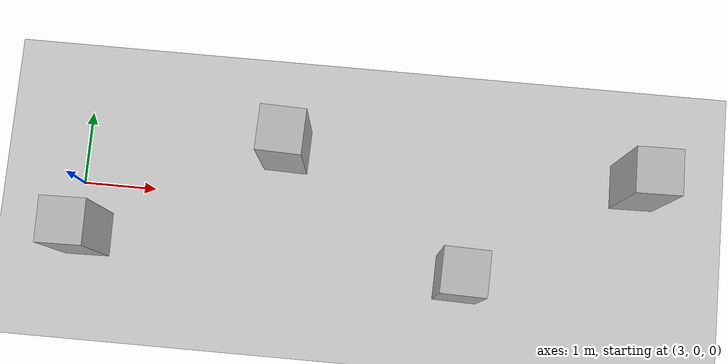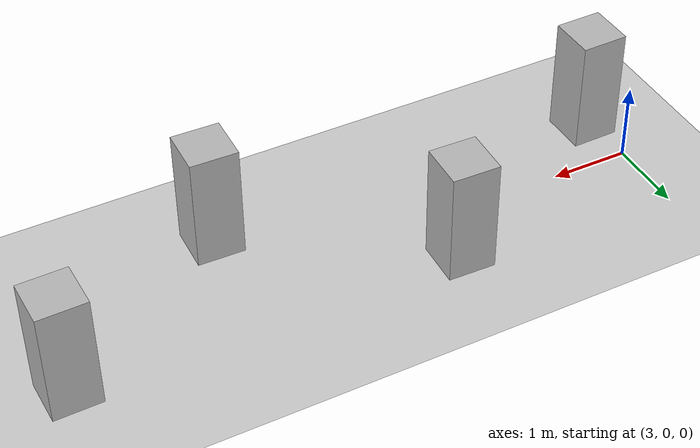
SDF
<?xml version="1.0"?>
<sdf version="1.6">
  <world name="v2-cal-static-dense-four-pillars-s4303">
    <gravity>0 0 -9.81</gravity>
    <physics name="v2_deterministic" type="ode">
      <max_step_size>0.002</max_step_size>
      <real_time_update_rate>500</real_time_update_rate>
    </physics>
    <include>
      <uri>model://sun</uri>
    </include>
    <include>
      <uri>model://ground_plane</uri>
    </include>
    <model name="cal-pillar-1">
      <static>true</static>
      <pose>3.150126896 -0.699681630 0.750000000 0 0 0.018553149</pose>
      <link name="link">
        <collision name="collision">
          <geometry>
            <box>
              <size>0.600000 0.600000 1.500000</size>
            </box>
          </geometry>
        </collision>
        <visual name="visual">
          <geometry>
            <box>
              <size>0.600000 0.600000 1.500000</size>
            </box>
          </geometry>
        </visual>
      </link>
    </model>
    <model name="cal-pillar-2">
      <static>true</static>
      <pose>5.785670902 0.707555419 0.750000000 0 0 -0.028539560</pose>
      <link name="link">
        <collision name="collision">
          <geometry>
            <box>
              <size>0.600000 0.600000 1.500000</size>
            </box>
          </geometry>
        </collision>
        <visual name="visual">
          <geometry>
            <box>
              <size>0.600000 0.600000 1.500000</size>
            </box>
          </geometry>
        </visual>
      </link>
    </model>
    <model name="cal-pillar-3">
      <static>true</static>
      <pose>8.268919909 -0.888291195 0.750000000 0 0 -0.025621958</pose>
      <link name="link">
        <collision name="collision">
          <geometry>
            <box>
              <size>0.600000 0.600000 1.500000</size>
            </box>
          </geometry>
        </collision>
        <visual name="visual">
          <geometry>
            <box>
              <size>0.600000 0.600000 1.500000</size>
            </box>
          </geometry>
        </visual>
      </link>
    </model>
    <model name="cal-pillar-4">
      <static>true</static>
      <pose>10.615458847 0.605592586 0.750000000 0 0 0.018185162</pose>
      <link name="link">
        <collision name="collision">
          <geometry>
            <box>
              <size>0.600000 0.600000 1.500000</size>
            </box>
          </geometry>
        </collision>
        <visual name="visual">
          <geometry>
            <box>
              <size>0.600000 0.600000 1.500000</size>
            </box>
          </geometry>
        </visual>
      </link>
    </model>
  </world>
</sdf>
